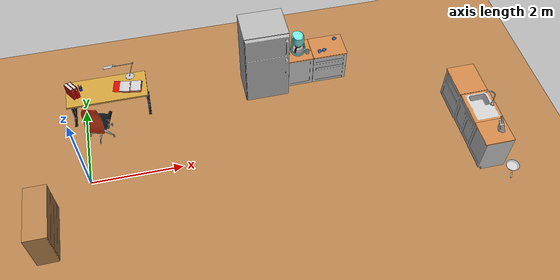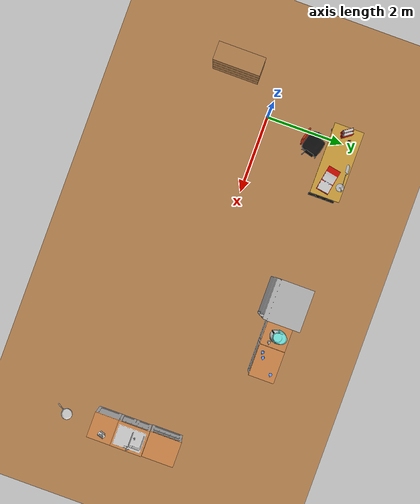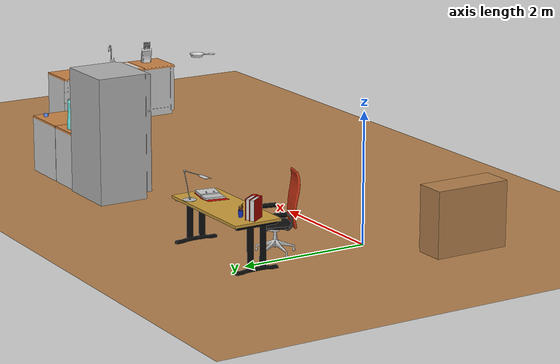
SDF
<sdf version="1.4">
 <world name="default">
  <model name="ground_plane">
   <pose>3.85 -3.2 0 0 0 0</pose>
   <static>1</static>
   <link name="link">
    <collision name="collision">
     <geometry><plane><normal>0 0 1</normal><size>10.3 11.5</size></plane></geometry>
     <surface><friction><ode><mu>100</mu><mu2>50</mu2></ode></friction></surface>
    </collision>
    <visual name="visual">
     <cast_shadows>0</cast_shadows>
     <geometry><plane><normal>0 0 1</normal><size>10.3 11.5</size></plane></geometry>
     <material>
      <script><uri>file://media/materials/scripts/gazebo.material</uri><name>Gazebo/NiceWoodFloor</name></script>
     </material>
    </visual>
    <velocity_decay><linear>0</linear><angular>0</angular></velocity_decay>
   </link>
  </model>
  <model name="desk">
   <static>1</static>
   <link name="link">
    <visual name="mesh"><geometry><mesh><uri>model://meshes/desk.dae</uri></mesh></geometry></visual>
    <collision name="top_collider">
     <pose>0 0 0.35 0 -0 0</pose>
     <geometry><box><size>1.8 0.75 0.7</size></box></geometry>
    </collision>
    <collision name="left_leg">
     <pose>0.85 0 0.345 0 -0 0</pose>
     <geometry><box><size>0.06 0.69 0.69</size></box></geometry>
    </collision>
    <collision name="right_leg">
     <pose>-0.85 0 0.345 0 -0 0</pose>
     <geometry><box><size>0.06 0.69 0.69</size></box></geometry>
    </collision>
    <velocity_decay><linear>0</linear><angular>0</angular></velocity_decay>
   </link>
   <pose>0.59912 1.95839 0 0 -0 0</pose>
  </model>
  <model name="office_chair">
   <static>1</static>
   <link name="link">
    <visual name="mesh"><geometry><mesh><uri>model://meshes/office_chair.dae</uri></mesh></geometry></visual>
    <collision name="seat">
     <pose>0 0 0.225 0 -0 0</pose>
     <geometry><box><size>0.46 0.5 0.45</size></box></geometry>
    </collision>
    <collision name="back_rest">
     <pose>0 -0.255 0.84 0 -0 0</pose>
     <geometry><box><size>0.4 0.04 0.84</size></box></geometry>
    </collision>
    <velocity_decay><linear>0</linear><angular>0</angular></velocity_decay>
   </link>
   <pose>0.342532 1.28647 0 0 0 -0.253782</pose>
  </model>
  <model name="desk_lamp">
   <static>1</static>
   <link name="link">
    <visual name="mesh"><geometry><mesh><uri>model://meshes/desk_lamp.dae</uri></mesh></geometry></visual>
    <velocity_decay><linear>0</linear><angular>0</angular></velocity_decay>
   </link>
   <pose>1.14967 2.22986 0.725892 0 0 -1.49191</pose>
  </model>
  <model name="folder_open">
   <static>1</static>
   <link name="link">
    <visual name="mesh"><geometry><mesh><uri>model://meshes/folder_open.dae</uri></mesh></geometry></visual>
    <collision name="box">
     <pose>0 0 0.025 0 -0 0</pose>
     <geometry><box><size>0.63 0.32 0.05</size></box></geometry>
    </collision>
    <velocity_decay><linear>0</linear><angular>0</angular></velocity_decay>
   </link>
   <pose>1.07776 1.90617 0.731065 0 0 -0.177012</pose>
  </model>
  <model name="folder">
   <static>1</static>
   <link name="link">
    <visual name="mesh"><geometry><mesh><uri>model://meshes/folder.dae</uri></mesh></geometry></visual>
    <collision name="box">
     <pose>0 0 0.04 0 -0 0</pose>
     <geometry><box><size>0.28 0.32 0.08</size></box></geometry>
    </collision>
    <velocity_decay><linear>0</linear><angular>0</angular></velocity_decay>
   </link>
   <pose>-0.117475 1.91973 0.882314 1.5708 5.55112e-17 2.18905</pose>
  </model>
  <model name="folder_clone">
   <static>1</static>
   <link name="link">
    <visual name="mesh"><geometry><mesh><uri>model://meshes/folder.dae</uri></mesh></geometry></visual>
    <collision name="box">
     <pose>0 0 0.04 0 -0 0</pose>
     <geometry><box><size>0.28 0.32 0.08</size></box></geometry>
    </collision>
    <velocity_decay><linear>0</linear><angular>0</angular></velocity_decay>
   </link>
   <pose>-0.194149 1.89837 0.882314 1.5708 5.55112e-17 2.18905</pose>
  </model>
  <model name="fridge">
   <static>1</static>
   <link name="link">
    <visual name="mesh"><geometry><mesh><uri>model://meshes/fridge.dae</uri></mesh></geometry></visual>
    <collision name="collider">
     <pose>0 -0.05 1 0 -0 0</pose>
     <geometry><box><size>1 0.977 2</size></box></geometry>
    </collision>
    <velocity_decay><linear>0</linear><angular>0</angular></velocity_decay>
   </link>
   <pose>4.22487 1.9437 0 0 -0 0</pose>
  </model>
  <model name="floor_unit_narrow1">
   <static>1</static>
   <link name="link">
    <visual name="mesh">
     <geometry><mesh><uri>model://meshes/floor_unit_narrow1.dae</uri></mesh></geometry>
    </visual>
    <collision name="collider">
     <pose>0 0 0.44 0 -0 0</pose>
     <geometry><box><size>0.6 0.6 0.88</size></box></geometry>
    </collision>
    <velocity_decay><linear>0</linear><angular>0</angular></velocity_decay>
   </link>
   <pose>5.05406 2.01347 0 0 -0 0</pose>
  </model>
  <model name="sink1">
   <static>1</static>
   <link name="link">
    <visual name="mesh"><geometry><mesh><uri>model://meshes/floor_unit_sink.dae</uri></mesh></geometry></visual>
    <collision name="collider">
     <pose>0 0 0.44 0 -0 0</pose>
     <geometry><box><size>0.8 0.6 0.88</size></box></geometry>
    </collision>
    <velocity_decay><linear>0</linear><angular>0</angular></velocity_decay>
   </link>
   <pose>8.59219 -0.482204 0 0 0 -1.5708</pose>
  </model>
  <model name="dresser">
   <static>1</static>
   <link name="link">
    <visual name="mesh">
     <geometry><mesh><uri>model://meshes/dresser.dae</uri></mesh></geometry>
     <material>
      <script><uri>file://media/materials/scripts/gazebo.material</uri><name>Gazebo/FurnitureWood1</name></script>
     </material>
    </visual>
    <collision name="collider">
     <pose>0 0 0.5 0 -0 0</pose>
     <geometry><box><size>1.2 0.47 1</size></box></geometry>
    </collision>
    <velocity_decay><linear>0</linear><angular>0</angular></velocity_decay>
   </link>
   <pose>-0.912315 -1.12023 0.000499 0 -0 1.5708</pose>
  </model>
  <model name="floor_unit_narrow1_0">
   <static>1</static>
   <link name="link">
    <visual name="mesh">
     <geometry><mesh><uri>model://meshes/floor_unit_narrow1.dae</uri></mesh></geometry>
    </visual>
    <collision name="collider">
     <pose>0 0 0.44 0 -0 0</pose>
     <geometry><box><size>0.6 0.6 0.88</size></box></geometry>
    </collision>
    <velocity_decay><linear>0</linear><angular>0</angular></velocity_decay>
   </link>
   <pose>8.58934 -1.18065 0 0 0 -1.5708</pose>
  </model>
  <model name="floor_unit_wide">
   <static>1</static>
   <link name="link">
    <visual name="mesh"><geometry><mesh><uri>model://meshes/floor_unit_wide.dae</uri></mesh></geometry></visual>
    <collision name="collider">
     <pose>0 0 0.44 0 -0 0</pose>
     <geometry><box><size>0.8 0.6 0.88</size></box></geometry>
    </collision>
    <velocity_decay><linear>0</linear><angular>0</angular></velocity_decay>
   </link>
   <pose>8.57743 0.325876 0 0 0 -1.5708</pose>
  </model>
  <model name="floor_unit_wide_0">
   <static>1</static>
   <link name="link">
    <visual name="mesh"><geometry><mesh><uri>model://meshes/floor_unit_wide.dae</uri></mesh></geometry></visual>
    <collision name="collider">
     <pose>0 0 0.44 0 -0 0</pose>
     <geometry><box><size>0.8 0.6 0.88</size></box></geometry>
    </collision>
    <velocity_decay><linear>0</linear><angular>0</angular></velocity_decay>
   </link>
   <pose>5.75866 2.0156 0 0 -0 0</pose>
  </model>
  <model name="coffee_machine">
   <static>1</static>
   <link name="link">
    <visual name="mesh"><geometry><mesh><uri>model://meshes/coffee_machine.dae</uri></mesh></geometry></visual>
    <collision name="base_collider">
     <pose>0 0 0.02 0 -0 0</pose>
     <geometry><box><size>0.34 0.4 0.3</size></box></geometry>
    </collision>
    <collision name="top_collider">
     <pose>0 0 0.36 0 -0 0</pose>
     <geometry><cylinder><radius>0.11</radius><length>0.2</length></cylinder></geometry>
    </collision>
    <velocity_decay><linear>0</linear><angular>0</angular></velocity_decay>
   </link>
   <pose>5.05467 1.98948 0.918779 0 -0 0.009461</pose>
  </model>
  <model name="coffee_pot">
   <static>1</static>
   <link name="link">
    <visual name="mesh"><geometry><mesh><uri>model://meshes/coffee_pot.dae</uri></mesh></geometry></visual>
    <collision name="collider">
     <pose>0 0 0.08 0 -0 0</pose>
     <geometry><cylinder><radius>0.135</radius><length>0.16</length></cylinder></geometry>
    </collision>
    <velocity_decay><linear>0</linear><angular>0</angular></velocity_decay>
   </link>
   <pose>5.04708 1.9621 0.960007 0 0 -0.651871</pose>
  </model>
  <model name="milk_pot">
   <static>1</static>
   <link name="link">
    <visual name="mesh"><geometry><mesh><uri>model://meshes/milk_pot.dae</uri></mesh></geometry></visual>
    <collision name="collider">
     <pose>0 0 0.06 0 -0 0</pose>
     <geometry><cylinder><radius>0.04</radius><length>0.12</length></cylinder></geometry>
    </collision>
    <velocity_decay><linear>0</linear><angular>0</angular></velocity_decay>
   </link>
   <pose>5.24869 1.86882 0.919065 0 -0 3.13042</pose>
  </model>
  <model name="pencil_jar">
   <static>1</static>
   <link name="link">
    <visual name="mesh"><geometry><mesh><uri>model://meshes/pencil_jar.dae</uri></mesh></geometry></visual>
    <collision name="collider">
     <pose>0 0 0.1 0 -0 0</pose>
     <geometry><cylinder><radius>0.035</radius><length>0.2</length></cylinder></geometry>
    </collision>
    <velocity_decay><linear>0</linear><angular>0</angular></velocity_decay>
   </link>
   <pose>0.041426 2.0398 0.728069 0 -0 0</pose>
  </model>
  <model name="knives">
   <static>1</static>
   <link name="link">
    <visual name="mesh"><geometry><mesh><uri>model://meshes/knives.dae</uri></mesh></geometry></visual>
    <collision name="collider">
     <geometry><mesh><uri>model://meshes/knives_collision.stl</uri></mesh></geometry>
    </collision>
    <velocity_decay><linear>0</linear><angular>0</angular></velocity_decay>
   </link>
   <pose>8.70013 -1.15016 0.881042 0 0 -1.86308</pose>
  </model>
  <model name="frying_pan">
   <static>1</static>
   <link name="link">
    <visual name="mesh"><geometry><mesh><uri>model://meshes/frying_pan.dae</uri></mesh></geometry></visual>
    <collision name="collider">
     <pose>0 0 0.032 0 -0 0</pose>
     <geometry><cylinder><radius>0.135</radius><length>0.064</length></cylinder></geometry>
    </collision>
    <velocity_decay><linear>0</linear><angular>0</angular></velocity_decay>
   </link>
   <pose>8.51127 -2.10058 0.95302 0 0 -2.12584</pose>
  </model>
  <model name="mug">
   <static>1</static>
   <link name="link">
    <visual name="mesh"><geometry><mesh><uri>model://meshes/cup.dae</uri></mesh></geometry></visual>
    <collision name="collider">
     <pose>0 0 0.025 0 -0 0</pose>
     <geometry><cylinder><radius>0.04</radius><length>0.05</length></cylinder></geometry>
    </collision>
    <velocity_decay><linear>0</linear><angular>0</angular></velocity_decay>
   </link>
   <pose>5.97153 2.16933 0.922223 0 -0 0</pose>
  </model>
  <model name="mug_clone">
   <static>1</static>
   <link name="link">
    <visual name="mesh"><geometry><mesh><uri>model://meshes/cup.dae</uri></mesh></geometry></visual>
    <collision name="collider">
     <pose>0 0 0.025 0 -0 0</pose>
     <geometry><cylinder><radius>0.04</radius><length>0.05</length></cylinder></geometry>
    </collision>
    <velocity_decay><linear>0</linear><angular>0</angular></velocity_decay>
   </link>
   <pose>5.64698 1.86296 0.922223 0 -0 0</pose>
  </model>
  <model name="mug_clone_clone">
   <static>1</static>
   <link name="link">
    <visual name="mesh"><geometry><mesh><uri>model://meshes/cup.dae</uri></mesh></geometry></visual>
    <collision name="collider">
     <pose>0 0 0.025 0 -0 0</pose>
     <geometry><cylinder><radius>0.04</radius><length>0.05</length></cylinder></geometry>
    </collision>
    <velocity_decay><linear>0</linear><angular>0</angular></velocity_decay>
   </link>
   <pose>5.52892 1.80473 0.96566 0 -0.257538 -0.322076</pose>
  </model>
 </world>
</sdf>
